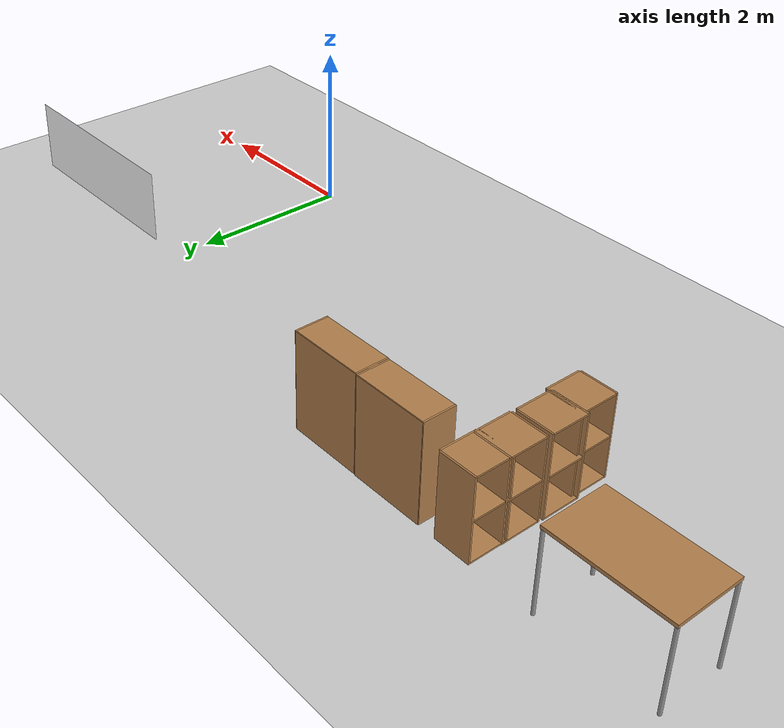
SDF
<sdf version="1.6">
 <world name="default">
  <model name="ground_plane">
   <static>1</static>
   <link name="link">
    <collision name="collision">
     <geometry><plane><normal>0 0 1</normal><size>100 100</size></plane></geometry>
     <surface><friction><ode><mu>100</mu><mu2>50</mu2></ode></friction></surface>
    </collision>
    <visual name="visual">
     <cast_shadows>0</cast_shadows>
     <geometry><plane><normal>0 0 1</normal><size>100 100</size></plane></geometry>
     <material>
      <script><uri>file://media/materials/scripts/gazebo.material</uri><name>Gazebo/Grey</name></script>
     </material>
    </visual>
   </link>
  </model>
  <model name="cabinet_3">
   <static>1</static>
   <link name="cabinet_bottom_plate">
    <inertial>
     <pose>0 0 -1 0 -0 0</pose>
     <inertia><ixx>2.05</ixx><ixy>0</ixy><ixz>0</ixz><iyy>2.05</iyy><iyz>0</iyz><izz>2.05</izz></inertia>
     <mass>25</mass>
    </inertial>
    <collision name="cabinet_bottom_plate_geom">
     <pose>0 0 0.01 0 -0 0</pose>
     <geometry><box><size>0.45 0.45 0.02</size></box></geometry>
    </collision>
    <visual name="cabinet_bottom_plate_geom_visual">
     <pose>0 0 0.01 0 -0 0</pose>
     <geometry><box><size>0.45 0.45 0.02</size></box></geometry>
     <material>
      <script><uri>file://media/materials/scripts/gazebo.material</uri><name>Gazebo/Wood</name></script>
     </material>
    </visual>
    <collision name="cabinet_bottom_plate_geom_cabinet_back_plate">
     <pose>0.235 0 0.51 0 -0 0</pose>
     <geometry><box><size>0.02 0.45 1.02</size></box></geometry>
    </collision>
    <visual name="cabinet_bottom_plate_geom_cabinet_back_plate_visual">
     <pose>0.235 0 0.51 0 -0 0</pose>
     <geometry><box><size>0.02 0.45 1.02</size></box></geometry>
     <material>
      <script><uri>file://media/materials/scripts/gazebo.material</uri><name>Gazebo/Wood</name></script>
     </material>
    </visual>
    <collision name="cabinet_bottom_plate_geom_cabinet_left_plate">
     <pose>0 0.235 0.51 0 -0 0</pose>
     <geometry><box><size>0.45 0.02 1.02</size></box></geometry>
    </collision>
    <visual name="cabinet_bottom_plate_geom_cabinet_left_plate_visual">
     <pose>0 0.235 0.51 0 -0 0</pose>
     <geometry><box><size>0.45 0.02 1.02</size></box></geometry>
     <material>
      <script><uri>file://media/materials/scripts/gazebo.material</uri><name>Gazebo/Wood</name></script>
     </material>
    </visual>
    <collision name="cabinet_bottom_plate_geom_cabinet_middle_plate">
     <pose>0 0 0.51 0 -0 0</pose>
     <geometry><box><size>0.45 0.45 0.02</size></box></geometry>
    </collision>
    <visual name="cabinet_bottom_plate_geom_cabinet_middle_plate_visual">
     <pose>0 0 0.51 0 -0 0</pose>
     <geometry><box><size>0.45 0.45 0.02</size></box></geometry>
     <material>
      <script><uri>file://media/materials/scripts/gazebo.material</uri><name>Gazebo/Wood</name></script>
     </material>
    </visual>
    <collision name="cabinet_bottom_plate_geom_cabinet_right_plate">
     <pose>0 -0.235 0.51 0 -0 0</pose>
     <geometry><box><size>0.45 0.02 1.02</size></box></geometry>
    </collision>
    <visual name="cabinet_bottom_plate_geom_cabinet_right_plate_visual">
     <pose>0 -0.235 0.51 0 -0 0</pose>
     <geometry><box><size>0.45 0.02 1.02</size></box></geometry>
     <material>
      <script><uri>file://media/materials/scripts/gazebo.material</uri><name>Gazebo/Wood</name></script>
     </material>
    </visual>
    <collision name="cabinet_bottom_plate_geom_cabinet_top_plate">
     <pose>0 0 1.01 0 -0 0</pose>
     <geometry><box><size>0.45 0.45 0.02</size></box></geometry>
    </collision>
    <visual name="cabinet_bottom_plate_geom_cabinet_top_plate_visual">
     <pose>0 0 1.01 0 -0 0</pose>
     <geometry><box><size>0.45 0.45 0.02</size></box></geometry>
     <material>
      <script><uri>file://media/materials/scripts/gazebo.material</uri><name>Gazebo/Wood</name></script>
     </material>
    </visual>
   </link>
   <pose>-5.87827 3.14588 0 0 -0 0</pose>
  </model>
  <model name="cabinet_4">
   <static>1</static>
   <link name="cabinet_bottom_plate">
    <inertial>
     <pose>0 0 -1 0 -0 0</pose>
     <inertia><ixx>2.05</ixx><ixy>0</ixy><ixz>0</ixz><iyy>2.05</iyy><iyz>0</iyz><izz>2.05</izz></inertia>
     <mass>25</mass>
    </inertial>
    <collision name="cabinet_bottom_plate_geom">
     <pose>0 0 0.01 0 -0 0</pose>
     <geometry><box><size>0.45 0.45 0.02</size></box></geometry>
    </collision>
    <visual name="cabinet_bottom_plate_geom_visual">
     <pose>0 0 0.01 0 -0 0</pose>
     <geometry><box><size>0.45 0.45 0.02</size></box></geometry>
     <material>
      <script><uri>file://media/materials/scripts/gazebo.material</uri><name>Gazebo/Wood</name></script>
     </material>
    </visual>
    <collision name="cabinet_bottom_plate_geom_cabinet_back_plate">
     <pose>0.235 0 0.51 0 -0 0</pose>
     <geometry><box><size>0.02 0.45 1.02</size></box></geometry>
    </collision>
    <visual name="cabinet_bottom_plate_geom_cabinet_back_plate_visual">
     <pose>0.235 0 0.51 0 -0 0</pose>
     <geometry><box><size>0.02 0.45 1.02</size></box></geometry>
     <material>
      <script><uri>file://media/materials/scripts/gazebo.material</uri><name>Gazebo/Wood</name></script>
     </material>
    </visual>
    <collision name="cabinet_bottom_plate_geom_cabinet_left_plate">
     <pose>0 0.235 0.51 0 -0 0</pose>
     <geometry><box><size>0.45 0.02 1.02</size></box></geometry>
    </collision>
    <visual name="cabinet_bottom_plate_geom_cabinet_left_plate_visual">
     <pose>0 0.235 0.51 0 -0 0</pose>
     <geometry><box><size>0.45 0.02 1.02</size></box></geometry>
     <material>
      <script><uri>file://media/materials/scripts/gazebo.material</uri><name>Gazebo/Wood</name></script>
     </material>
    </visual>
    <collision name="cabinet_bottom_plate_geom_cabinet_middle_plate">
     <pose>0 0 0.51 0 -0 0</pose>
     <geometry><box><size>0.45 0.45 0.02</size></box></geometry>
    </collision>
    <visual name="cabinet_bottom_plate_geom_cabinet_middle_plate_visual">
     <pose>0 0 0.51 0 -0 0</pose>
     <geometry><box><size>0.45 0.45 0.02</size></box></geometry>
     <material>
      <script><uri>file://media/materials/scripts/gazebo.material</uri><name>Gazebo/Wood</name></script>
     </material>
    </visual>
    <collision name="cabinet_bottom_plate_geom_cabinet_right_plate">
     <pose>0 -0.235 0.51 0 -0 0</pose>
     <geometry><box><size>0.45 0.02 1.02</size></box></geometry>
    </collision>
    <visual name="cabinet_bottom_plate_geom_cabinet_right_plate_visual">
     <pose>0 -0.235 0.51 0 -0 0</pose>
     <geometry><box><size>0.45 0.02 1.02</size></box></geometry>
     <material>
      <script><uri>file://media/materials/scripts/gazebo.material</uri><name>Gazebo/Wood</name></script>
     </material>
    </visual>
    <collision name="cabinet_bottom_plate_geom_cabinet_top_plate">
     <pose>0 0 1.01 0 -0 0</pose>
     <geometry><box><size>0.45 0.45 0.02</size></box></geometry>
    </collision>
    <visual name="cabinet_bottom_plate_geom_cabinet_top_plate_visual">
     <pose>0 0 1.01 0 -0 0</pose>
     <geometry><box><size>0.45 0.45 0.02</size></box></geometry>
     <material>
      <script><uri>file://media/materials/scripts/gazebo.material</uri><name>Gazebo/Wood</name></script>
     </material>
    </visual>
   </link>
   <pose>-5.88308 2.72945 0 0 -0 0</pose>
  </model>
  <model name="cabinet_5">
   <static>1</static>
   <link name="cabinet_bottom_plate">
    <inertial>
     <pose>0 0 -1 0 -0 0</pose>
     <inertia><ixx>2.05</ixx><ixy>0</ixy><ixz>0</ixz><iyy>2.05</iyy><iyz>0</iyz><izz>2.05</izz></inertia>
     <mass>25</mass>
    </inertial>
    <collision name="cabinet_bottom_plate_geom">
     <pose>0 0 0.01 0 -0 0</pose>
     <geometry><box><size>0.45 0.45 0.02</size></box></geometry>
    </collision>
    <visual name="cabinet_bottom_plate_geom_visual">
     <pose>0 0 0.01 0 -0 0</pose>
     <geometry><box><size>0.45 0.45 0.02</size></box></geometry>
     <material>
      <script><uri>file://media/materials/scripts/gazebo.material</uri><name>Gazebo/Wood</name></script>
     </material>
    </visual>
    <collision name="cabinet_bottom_plate_geom_cabinet_back_plate">
     <pose>0.235 0 0.51 0 -0 0</pose>
     <geometry><box><size>0.02 0.45 1.02</size></box></geometry>
    </collision>
    <visual name="cabinet_bottom_plate_geom_cabinet_back_plate_visual">
     <pose>0.235 0 0.51 0 -0 0</pose>
     <geometry><box><size>0.02 0.45 1.02</size></box></geometry>
     <material>
      <script><uri>file://media/materials/scripts/gazebo.material</uri><name>Gazebo/Wood</name></script>
     </material>
    </visual>
    <collision name="cabinet_bottom_plate_geom_cabinet_left_plate">
     <pose>0 0.235 0.51 0 -0 0</pose>
     <geometry><box><size>0.45 0.02 1.02</size></box></geometry>
    </collision>
    <visual name="cabinet_bottom_plate_geom_cabinet_left_plate_visual">
     <pose>0 0.235 0.51 0 -0 0</pose>
     <geometry><box><size>0.45 0.02 1.02</size></box></geometry>
     <material>
      <script><uri>file://media/materials/scripts/gazebo.material</uri><name>Gazebo/Wood</name></script>
     </material>
    </visual>
    <collision name="cabinet_bottom_plate_geom_cabinet_middle_plate">
     <pose>0 0 0.51 0 -0 0</pose>
     <geometry><box><size>0.45 0.45 0.02</size></box></geometry>
    </collision>
    <visual name="cabinet_bottom_plate_geom_cabinet_middle_plate_visual">
     <pose>0 0 0.51 0 -0 0</pose>
     <geometry><box><size>0.45 0.45 0.02</size></box></geometry>
     <material>
      <script><uri>file://media/materials/scripts/gazebo.material</uri><name>Gazebo/Wood</name></script>
     </material>
    </visual>
    <collision name="cabinet_bottom_plate_geom_cabinet_right_plate">
     <pose>0 -0.235 0.51 0 -0 0</pose>
     <geometry><box><size>0.45 0.02 1.02</size></box></geometry>
    </collision>
    <visual name="cabinet_bottom_plate_geom_cabinet_right_plate_visual">
     <pose>0 -0.235 0.51 0 -0 0</pose>
     <geometry><box><size>0.45 0.02 1.02</size></box></geometry>
     <material>
      <script><uri>file://media/materials/scripts/gazebo.material</uri><name>Gazebo/Wood</name></script>
     </material>
    </visual>
    <collision name="cabinet_bottom_plate_geom_cabinet_top_plate">
     <pose>0 0 1.01 0 -0 0</pose>
     <geometry><box><size>0.45 0.45 0.02</size></box></geometry>
    </collision>
    <visual name="cabinet_bottom_plate_geom_cabinet_top_plate_visual">
     <pose>0 0 1.01 0 -0 0</pose>
     <geometry><box><size>0.45 0.45 0.02</size></box></geometry>
     <material>
      <script><uri>file://media/materials/scripts/gazebo.material</uri><name>Gazebo/Wood</name></script>
     </material>
    </visual>
   </link>
   <pose>-5.8935 2.2003 0 0 -0 0</pose>
  </model>
  <model name="cabinet_6">
   <static>1</static>
   <link name="cabinet_bottom_plate">
    <inertial>
     <pose>0 0 -1 0 -0 0</pose>
     <inertia><ixx>2.05</ixx><ixy>0</ixy><ixz>0</ixz><iyy>2.05</iyy><iyz>0</iyz><izz>2.05</izz></inertia>
     <mass>25</mass>
    </inertial>
    <collision name="cabinet_bottom_plate_geom">
     <pose>0 0 0.01 0 -0 0</pose>
     <geometry><box><size>0.45 0.45 0.02</size></box></geometry>
    </collision>
    <visual name="cabinet_bottom_plate_geom_visual">
     <pose>0 0 0.01 0 -0 0</pose>
     <geometry><box><size>0.45 0.45 0.02</size></box></geometry>
     <material>
      <script><uri>file://media/materials/scripts/gazebo.material</uri><name>Gazebo/Wood</name></script>
     </material>
    </visual>
    <collision name="cabinet_bottom_plate_geom_cabinet_back_plate">
     <pose>0.235 0 0.51 0 -0 0</pose>
     <geometry><box><size>0.02 0.45 1.02</size></box></geometry>
    </collision>
    <visual name="cabinet_bottom_plate_geom_cabinet_back_plate_visual">
     <pose>0.235 0 0.51 0 -0 0</pose>
     <geometry><box><size>0.02 0.45 1.02</size></box></geometry>
     <material>
      <script><uri>file://media/materials/scripts/gazebo.material</uri><name>Gazebo/Wood</name></script>
     </material>
    </visual>
    <collision name="cabinet_bottom_plate_geom_cabinet_left_plate">
     <pose>0 0.235 0.51 0 -0 0</pose>
     <geometry><box><size>0.45 0.02 1.02</size></box></geometry>
    </collision>
    <visual name="cabinet_bottom_plate_geom_cabinet_left_plate_visual">
     <pose>0 0.235 0.51 0 -0 0</pose>
     <geometry><box><size>0.45 0.02 1.02</size></box></geometry>
     <material>
      <script><uri>file://media/materials/scripts/gazebo.material</uri><name>Gazebo/Wood</name></script>
     </material>
    </visual>
    <collision name="cabinet_bottom_plate_geom_cabinet_middle_plate">
     <pose>0 0 0.51 0 -0 0</pose>
     <geometry><box><size>0.45 0.45 0.02</size></box></geometry>
    </collision>
    <visual name="cabinet_bottom_plate_geom_cabinet_middle_plate_visual">
     <pose>0 0 0.51 0 -0 0</pose>
     <geometry><box><size>0.45 0.45 0.02</size></box></geometry>
     <material>
      <script><uri>file://media/materials/scripts/gazebo.material</uri><name>Gazebo/Wood</name></script>
     </material>
    </visual>
    <collision name="cabinet_bottom_plate_geom_cabinet_right_plate">
     <pose>0 -0.235 0.51 0 -0 0</pose>
     <geometry><box><size>0.45 0.02 1.02</size></box></geometry>
    </collision>
    <visual name="cabinet_bottom_plate_geom_cabinet_right_plate_visual">
     <pose>0 -0.235 0.51 0 -0 0</pose>
     <geometry><box><size>0.45 0.02 1.02</size></box></geometry>
     <material>
      <script><uri>file://media/materials/scripts/gazebo.material</uri><name>Gazebo/Wood</name></script>
     </material>
    </visual>
    <collision name="cabinet_bottom_plate_geom_cabinet_top_plate">
     <pose>0 0 1.01 0 -0 0</pose>
     <geometry><box><size>0.45 0.45 0.02</size></box></geometry>
    </collision>
    <visual name="cabinet_bottom_plate_geom_cabinet_top_plate_visual">
     <pose>0 0 1.01 0 -0 0</pose>
     <geometry><box><size>0.45 0.45 0.02</size></box></geometry>
     <material>
      <script><uri>file://media/materials/scripts/gazebo.material</uri><name>Gazebo/Wood</name></script>
     </material>
    </visual>
   </link>
   <pose>-5.85166 1.76518 0 0 -0 0</pose>
  </model>
  <model name="bookshelf_0">
   <static>1</static>
   <link name="link">
    <inertial><mass>1</mass></inertial>
    <collision name="back">
     <pose>0 0.005 0.6 0 -0 0</pose>
     <geometry><box><size>0.9 0.01 1.2</size></box></geometry>
    </collision>
    <visual name="visual1">
     <pose>0 0.005 0.6 0 -0 0</pose>
     <geometry><box><size>0.9 0.01 1.2</size></box></geometry>
     <material>
      <script><uri>file://media/materials/scripts/gazebo.material</uri><name>Gazebo/Wood</name></script>
     </material>
    </visual>
    <collision name="left_side">
     <pose>0.45 -0.195 0.6 0 -0 0</pose>
     <geometry><box><size>0.02 0.4 1.2</size></box></geometry>
    </collision>
    <visual name="visual2">
     <pose>0.45 -0.195 0.6 0 -0 0</pose>
     <geometry><box><size>0.02 0.4 1.2</size></box></geometry>
     <material>
      <script><uri>file://media/materials/scripts/gazebo.material</uri><name>Gazebo/Wood</name></script>
     </material>
    </visual>
    <collision name="right_side">
     <pose>-0.45 -0.195 0.6 0 -0 0</pose>
     <geometry><box><size>0.02 0.4 1.2</size></box></geometry>
    </collision>
    <visual name="visual3">
     <pose>-0.45 -0.195 0.6 0 -0 0</pose>
     <geometry><box><size>0.02 0.4 1.2</size></box></geometry>
     <material>
      <script><uri>file://media/materials/scripts/gazebo.material</uri><name>Gazebo/Wood</name></script>
     </material>
    </visual>
    <collision name="bottom">
     <pose>0 -0.195 0.03 0 -0 0</pose>
     <geometry><box><size>0.88 0.4 0.06</size></box></geometry>
    </collision>
    <visual name="visual4">
     <pose>0 -0.195 0.03 0 -0 0</pose>
     <geometry><box><size>0.88 0.4 0.06</size></box></geometry>
     <material>
      <script><uri>file://media/materials/scripts/gazebo.material</uri><name>Gazebo/Wood</name></script>
     </material>
    </visual>
    <collision name="top">
     <pose>0 -0.195 1.19 0 -0 0</pose>
     <geometry><box><size>0.88 0.4 0.02</size></box></geometry>
    </collision>
    <visual name="visual5">
     <pose>0 -0.195 1.19 0 -0 0</pose>
     <geometry><box><size>0.88 0.4 0.02</size></box></geometry>
     <material>
      <script><uri>file://media/materials/scripts/gazebo.material</uri><name>Gazebo/Wood</name></script>
     </material>
    </visual>
    <collision name="low_shelf">
     <pose>0 -0.195 0.43 0 -0 0</pose>
     <geometry><box><size>0.88 0.4 0.02</size></box></geometry>
    </collision>
    <visual name="visual6">
     <pose>0 -0.195 0.43 0 -0 0</pose>
     <geometry><box><size>0.88 0.4 0.02</size></box></geometry>
     <material>
      <script><uri>file://media/materials/scripts/gazebo.material</uri><name>Gazebo/Wood</name></script>
     </material>
    </visual>
    <collision name="high_shelf">
     <pose>0 -0.195 0.8 0 -0 0</pose>
     <geometry><box><size>0.88 0.4 0.02</size></box></geometry>
    </collision>
    <visual name="visual7">
     <pose>0 -0.195 0.8 0 -0 0</pose>
     <geometry><box><size>0.88 0.4 0.02</size></box></geometry>
     <material>
      <script><uri>file://media/materials/scripts/gazebo.material</uri><name>Gazebo/Wood</name></script>
     </material>
    </visual>
   </link>
   <pose>-4.97943 3.37977 0 0 -0 0</pose>
  </model>
  <model name="bookshelf_1">
   <static>1</static>
   <link name="link">
    <inertial><mass>1</mass></inertial>
    <collision name="back">
     <pose>0 0.005 0.6 0 -0 0</pose>
     <geometry><box><size>0.9 0.01 1.2</size></box></geometry>
    </collision>
    <visual name="visual1">
     <pose>0 0.005 0.6 0 -0 0</pose>
     <geometry><box><size>0.9 0.01 1.2</size></box></geometry>
     <material>
      <script><uri>file://media/materials/scripts/gazebo.material</uri><name>Gazebo/Wood</name></script>
     </material>
    </visual>
    <collision name="left_side">
     <pose>0.45 -0.195 0.6 0 -0 0</pose>
     <geometry><box><size>0.02 0.4 1.2</size></box></geometry>
    </collision>
    <visual name="visual2">
     <pose>0.45 -0.195 0.6 0 -0 0</pose>
     <geometry><box><size>0.02 0.4 1.2</size></box></geometry>
     <material>
      <script><uri>file://media/materials/scripts/gazebo.material</uri><name>Gazebo/Wood</name></script>
     </material>
    </visual>
    <collision name="right_side">
     <pose>-0.45 -0.195 0.6 0 -0 0</pose>
     <geometry><box><size>0.02 0.4 1.2</size></box></geometry>
    </collision>
    <visual name="visual3">
     <pose>-0.45 -0.195 0.6 0 -0 0</pose>
     <geometry><box><size>0.02 0.4 1.2</size></box></geometry>
     <material>
      <script><uri>file://media/materials/scripts/gazebo.material</uri><name>Gazebo/Wood</name></script>
     </material>
    </visual>
    <collision name="bottom">
     <pose>0 -0.195 0.03 0 -0 0</pose>
     <geometry><box><size>0.88 0.4 0.06</size></box></geometry>
    </collision>
    <visual name="visual4">
     <pose>0 -0.195 0.03 0 -0 0</pose>
     <geometry><box><size>0.88 0.4 0.06</size></box></geometry>
     <material>
      <script><uri>file://media/materials/scripts/gazebo.material</uri><name>Gazebo/Wood</name></script>
     </material>
    </visual>
    <collision name="top">
     <pose>0 -0.195 1.19 0 -0 0</pose>
     <geometry><box><size>0.88 0.4 0.02</size></box></geometry>
    </collision>
    <visual name="visual5">
     <pose>0 -0.195 1.19 0 -0 0</pose>
     <geometry><box><size>0.88 0.4 0.02</size></box></geometry>
     <material>
      <script><uri>file://media/materials/scripts/gazebo.material</uri><name>Gazebo/Wood</name></script>
     </material>
    </visual>
    <collision name="low_shelf">
     <pose>0 -0.195 0.43 0 -0 0</pose>
     <geometry><box><size>0.88 0.4 0.02</size></box></geometry>
    </collision>
    <visual name="visual6">
     <pose>0 -0.195 0.43 0 -0 0</pose>
     <geometry><box><size>0.88 0.4 0.02</size></box></geometry>
     <material>
      <script><uri>file://media/materials/scripts/gazebo.material</uri><name>Gazebo/Wood</name></script>
     </material>
    </visual>
    <collision name="high_shelf">
     <pose>0 -0.195 0.8 0 -0 0</pose>
     <geometry><box><size>0.88 0.4 0.02</size></box></geometry>
    </collision>
    <visual name="visual7">
     <pose>0 -0.195 0.8 0 -0 0</pose>
     <geometry><box><size>0.88 0.4 0.02</size></box></geometry>
     <material>
      <script><uri>file://media/materials/scripts/gazebo.material</uri><name>Gazebo/Wood</name></script>
     </material>
    </visual>
   </link>
   <pose>-4.05712 3.37315 0 0 -0 0</pose>
  </model>
  <model name="table_0">
   <static>0</static>
   <link name="link">
    <collision name="surface">
     <pose>0 0 1 0 -0 0</pose>
     <geometry><box><size>1.5 0.8 0.03</size></box></geometry>
     <surface><friction><ode><mu>0.6</mu><mu2>0.6</mu2></ode></friction></surface>
    </collision>
    <visual name="visual1">
     <pose>0 0 1 0 -0 0</pose>
     <geometry><box><size>1.4 0.8 0.04</size></box></geometry>
     <material>
      <script><uri>file://media/materials/scripts/gazebo.material</uri><name>Gazebo/Wood</name></script>
     </material>
    </visual>
    <collision name="front_left_leg">
     <pose>0.68 0.38 0.5 0 -0 0</pose>
     <geometry><cylinder><radius>0.02</radius><length>1</length></cylinder></geometry>
    </collision>
    <visual name="front_left_leg">
     <pose>0.68 0.38 0.5 0 -0 0</pose>
     <geometry><cylinder><radius>0.02</radius><length>1</length></cylinder></geometry>
     <material>
      <script><uri>file://media/materials/scripts/gazebo.material</uri><name>Gazebo/Grey</name></script>
     </material>
    </visual>
    <collision name="front_right_leg">
     <pose>0.68 -0.38 0.5 0 -0 0</pose>
     <geometry><cylinder><radius>0.02</radius><length>1</length></cylinder></geometry>
    </collision>
    <visual name="front_right_leg">
     <pose>0.68 -0.38 0.5 0 -0 0</pose>
     <geometry><cylinder><radius>0.02</radius><length>1</length></cylinder></geometry>
     <material>
      <script><uri>file://media/materials/scripts/gazebo.material</uri><name>Gazebo/Grey</name></script>
     </material>
    </visual>
    <collision name="back_right_leg">
     <pose>-0.68 -0.38 0.5 0 -0 0</pose>
     <geometry><cylinder><radius>0.02</radius><length>1</length></cylinder></geometry>
    </collision>
    <visual name="back_right_leg">
     <pose>-0.68 -0.38 0.5 0 -0 0</pose>
     <geometry><cylinder><radius>0.02</radius><length>1</length></cylinder></geometry>
     <material>
      <script><uri>file://media/materials/scripts/gazebo.material</uri><name>Gazebo/Grey</name></script>
     </material>
    </visual>
    <collision name="back_left_leg">
     <pose>-0.68 0.38 0.5 0 -0 0</pose>
     <geometry><cylinder><radius>0.02</radius><length>1</length></cylinder></geometry>
    </collision>
    <visual name="back_left_leg">
     <pose>-0.68 0.38 0.5 0 -0 0</pose>
     <geometry><cylinder><radius>0.02</radius><length>1</length></cylinder></geometry>
     <material>
      <script><uri>file://media/materials/scripts/gazebo.material</uri><name>Gazebo/Grey</name></script>
     </material>
    </visual>
    <inertial>
     <inertia><ixx>1</ixx><ixy>0</ixy><ixz>0</ixz><iyy>1</iyy><iyz>0</iyz><izz>1</izz></inertia>
     <mass>1</mass>
    </inertial>
   </link>
   <pose>-7.54851 2.99089 -7e-06 1e-06 -3e-06 0</pose>
  </model>
  <model name="LernFabrik">
   <link name="marker">
    <inertial>
     <mass>1</mass>
     <inertia>
      <ixx>0.166667</ixx>
      <ixy>0</ixy>
      <ixz>0</ixz>
      <iyy>0.166667</iyy>
      <iyz>0</iyz>
      <izz>0.166667</izz>
     </inertia>
    </inertial>
    <visual name="visual">
     <geometry><box><size>0.8 2.3 1e-05</size></box></geometry>
     <material>
      <script>
       <uri>model://LernFabrik/materials/scripts</uri>
       <uri>model://LernFabrik/materials/textures</uri>
       <name>LernFabrikVisualLogo/Logo</name>
      </script>
      <ambient>1 1 1 1</ambient>
      <diffuse>1 1 1 1</diffuse>
      <specular>0 0 0 1</specular>
      <emissive>1 1 1 0</emissive>
      <shader type="vertex"><normal_map>__default__</normal_map></shader>
     </material>
    </visual>
    <collision name="collision"><geometry><box><size>0.8 2.3 1e-05</size></box></geometry></collision>
   </link>
   <link name="marker_pad">
    <pose frame="marker">0 0 -1e-05 0 -0 0</pose>
    <visual name="visual">
     <geometry><box><size>0.01 0.01 1e-05</size></box></geometry>
     <material>
      <lighting>1</lighting>
      <script><uri>file://media/materials/scripts/gazebo.material</uri><name>Gazebo/White</name></script>
      <ambient>0.3 0.3 0.3 1</ambient>
      <diffuse>0.7 0.7 0.7 1</diffuse>
      <specular>0.01 0.01 0.01 1</specular>
      <emissive>1 1 1 0</emissive>
      <shader type="vertex"><normal_map>__default__</normal_map></shader>
     </material>
     <transparency>1</transparency>
    </visual>
    <collision name="collision"><geometry><box><size>0.01 0.01 1e-05</size></box></geometry></collision>
   </link>
   <joint name="marker_JOINT_marker_pad" type="revolute">
    <parent>marker</parent>
    <child>marker_pad</child>
    <axis>
     <xyz>0 0 1</xyz>
     <limit><upper>0</upper><lower>0</lower></limit>
     <use_parent_model_frame>0</use_parent_model_frame>
     <dynamics><spring_reference>0</spring_reference><spring_stiffness>0</spring_stiffness></dynamics>
    </axis>
   </joint>
   <static>1</static>
   <pose>0 3.39 1.5 3.14159 1.57079 -1.57079</pose>
  </model>
 </world>
</sdf>
